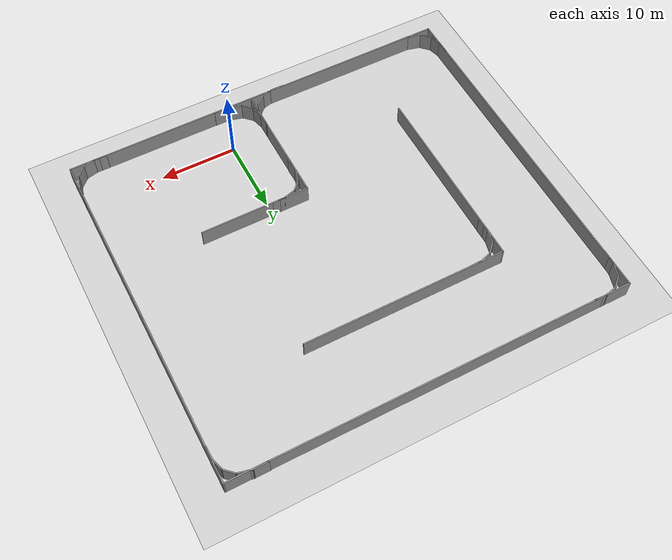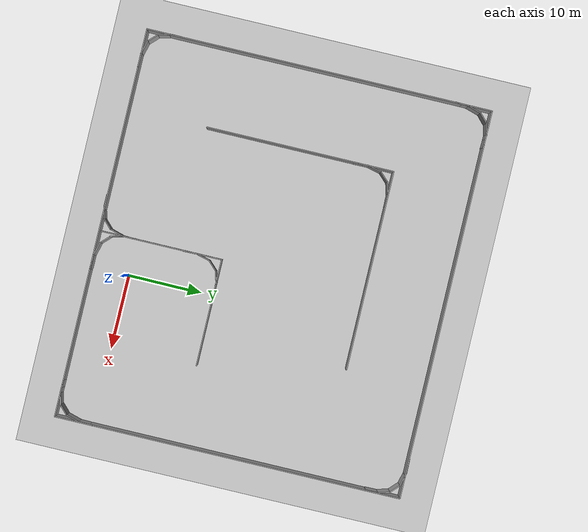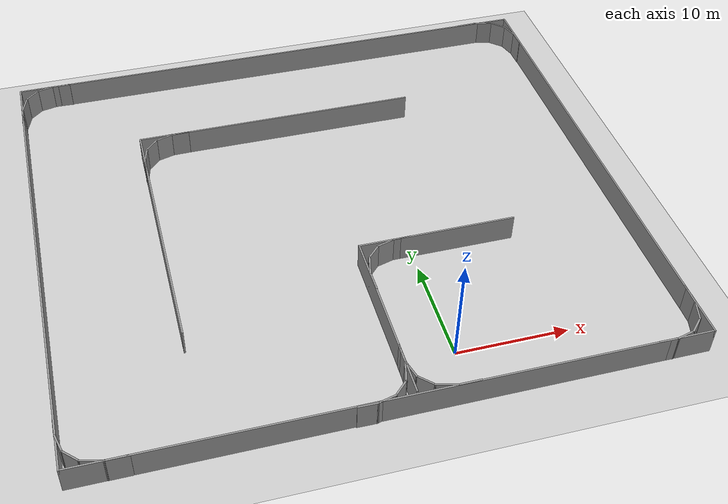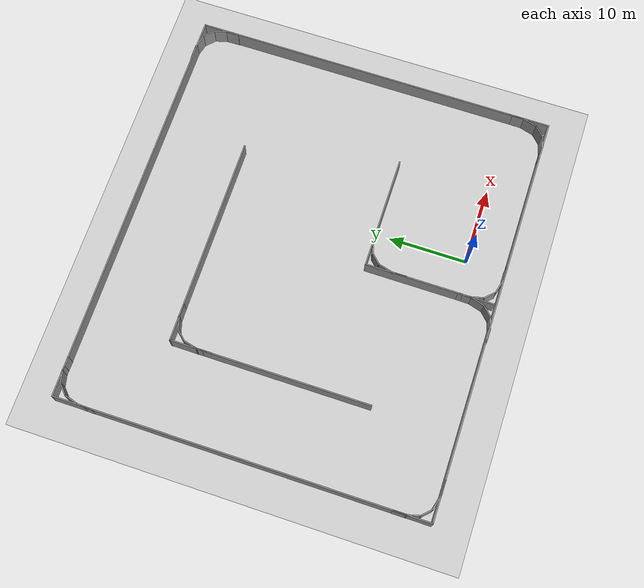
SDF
<sdf version="1.7">
 <world name="default">
  <light name="sun" type="directional">
   <pose>0 0 10 0 -0 0</pose>
   <diffuse>0.8 0.8 0.8 1</diffuse>
   <specular>0.2 0.2 0.2 1</specular>
   <attenuation>
    <range>1000</range>
    <constant>0.9</constant>
    <linear>0.01</linear>
    <quadratic>0.001</quadratic>
   </attenuation>
   <direction>-0.5 0.1 -0.9</direction>
   <spot><inner_angle>0</inner_angle><outer_angle>0</outer_angle><falloff>0</falloff></spot>
  </light>
  <model name="ground_plane">
   <static>1</static>
   <link name="link">
    <collision name="collision">
     <geometry><plane><normal>0 0 1</normal><size>100 100</size></plane></geometry>
     <surface><friction><ode><mu>100</mu><mu2>50</mu2></ode></friction></surface>
    </collision>
    <visual name="visual">
     <cast_shadows>0</cast_shadows>
     <geometry><plane><normal>0 0 1</normal><size>100 100</size></plane></geometry>
     <material>
      <script><uri>file://media/materials/scripts/gazebo.material</uri><name>Gazebo/Grey</name></script>
     </material>
    </visual>
   </link>
  </model>
  <gravity>0 0 -9.8</gravity>
  <magnetic_field>6e-06 2.3e-05 -4.2e-05</magnetic_field>
  <atmosphere type="adiabatic"/>
  <physics type="ode">
   <max_step_size>0.001</max_step_size>
   <real_time_factor>1</real_time_factor>
   <real_time_update_rate>1000</real_time_update_rate>
  </physics>
  <scene><ambient>0.4 0.4 0.4 1</ambient><background>0.7 0.7 0.7 1</background><shadows>1</shadows></scene>
  <audio><device>default</device></audio>
  <spherical_coordinates>
   <surface_model>EARTH_WGS84</surface_model>
   <latitude_deg>0</latitude_deg>
   <longitude_deg>0</longitude_deg>
   <elevation>0</elevation>
   <heading_deg>0</heading_deg>
  </spherical_coordinates>
  <model name="TRACK">
   <pose>-5.82578 18.4678 0 0 -0 0</pose>
   <link name="Wall_50">
    <collision name="Wall_50_Collision">
     <geometry><box><size>47 0.15 2.5</size></box></geometry>
     <pose>0 0 1.25 0 -0 0</pose>
    </collision>
    <visual name="Wall_50_Visual">
     <pose>0 0 1.25 0 -0 0</pose>
     <geometry><box><size>47 0.15 2.5</size></box></geometry>
     <material>
      <script><uri>file://media/materials/scripts/gazebo.material</uri><name>Gazebo/Grey</name></script>
      <ambient>1 1 1 1</ambient>
     </material>
     <meta><layer>0</layer></meta>
    </visual>
    <pose>-26.4877 -0 0 0 -0 -1.5708</pose>
   </link>
   <link name="Wall_51">
    <collision name="Wall_51_Collision">
     <geometry><box><size>52.75 0.15 2.5</size></box></geometry>
     <pose>0 0 1.25 0 -0 0</pose>
    </collision>
    <visual name="Wall_51_Visual">
     <pose>0 0 1.25 0 -0 0</pose>
     <geometry><box><size>52.75 0.15 2.5</size></box></geometry>
     <material>
      <script><uri>file://media/materials/scripts/gazebo.material</uri><name>Gazebo/Grey</name></script>
      <ambient>1 1 1 1</ambient>
     </material>
     <meta><layer>0</layer></meta>
    </visual>
    <pose>-0.187733 -23.425 0 0 -0 0</pose>
   </link>
   <link name="Wall_52">
    <collision name="Wall_52_Collision">
     <geometry><box><size>47 0.15 2.5</size></box></geometry>
     <pose>0 0 1.25 0 -0 0</pose>
    </collision>
    <visual name="Wall_52_Visual">
     <pose>0 0 1.25 0 -0 0</pose>
     <geometry><box><size>47 0.15 2.5</size></box></geometry>
     <material>
      <script><uri>file://media/materials/scripts/gazebo.material</uri><name>Gazebo/Grey</name></script>
      <ambient>1 1 1 1</ambient>
     </material>
     <meta><layer>0</layer></meta>
    </visual>
    <pose>26.1123 -0 0 0 -0 1.5708</pose>
   </link>
   <link name="Wall_53">
    <collision name="Wall_53_Collision">
     <geometry><box><size>52.75 0.15 2.5</size></box></geometry>
     <pose>0 0 1.25 0 -0 0</pose>
    </collision>
    <visual name="Wall_53_Visual">
     <pose>0 0 1.25 0 -0 0</pose>
     <geometry><box><size>52.75 0.15 2.5</size></box></geometry>
     <material>
      <script><uri>file://media/materials/scripts/gazebo.material</uri><name>Gazebo/Grey</name></script>
      <ambient>1 1 1 1</ambient>
     </material>
     <meta><layer>0</layer></meta>
    </visual>
    <pose>-0.187733 23.425 0 0 -0 3.14159</pose>
   </link>
   <link name="Wall_55">
    <collision name="Wall_55_Collision">
     <geometry><box><size>25.5 0.15 2.5</size></box></geometry>
     <pose>0 0 1.25 0 -0 0</pose>
    </collision>
    <visual name="Wall_55_Visual">
     <pose>0 0 1.25 0 -0 0</pose>
     <geometry><box><size>25.5 0.15 2.5</size></box></geometry>
     <material>
      <script><uri>file://media/materials/scripts/gazebo.material</uri><name>Gazebo/Grey</name></script>
      <ambient>1 1 1 1</ambient>
     </material>
     <meta><layer>0</layer></meta>
    </visual>
    <pose>-15.6997 -0.038051 0 0 -0 -1.5708</pose>
   </link>
   <link name="Wall_57">
    <collision name="Wall_57_Collision">
     <geometry><box><size>27 0.15 2.5</size></box></geometry>
     <pose>0 0 1.25 0 -0 0</pose>
    </collision>
    <visual name="Wall_57_Visual">
     <pose>0 0 1.25 0 -0 0</pose>
     <geometry><box><size>27 0.15 2.5</size></box></geometry>
     <material>
      <script><uri>file://media/materials/scripts/gazebo.material</uri><name>Gazebo/Grey</name></script>
      <ambient>1 1 1 1</ambient>
     </material>
     <meta><layer>0</layer></meta>
    </visual>
    <pose>-2.27468 12.6369 0 0 -0 0</pose>
   </link>
   <link name="Wall_61">
    <collision name="Wall_61_Collision">
     <geometry><box><size>16.5 0.15 2.5</size></box></geometry>
     <pose>0 0 1.25 0 -0 0</pose>
    </collision>
    <visual name="Wall_61_Visual">
     <pose>0 0 1.25 0 -0 0</pose>
     <geometry><box><size>16.5 0.15 2.5</size></box></geometry>
     <material>
      <script><uri>file://media/materials/scripts/gazebo.material</uri><name>Gazebo/Grey</name></script>
      <ambient>1 1 1 1</ambient>
     </material>
     <meta><layer>0</layer></meta>
    </visual>
    <pose>0.869711 -14.9513 0 0 -0 1.5708</pose>
   </link>
   <link name="Wall_62">
    <collision name="Wall_62_Collision">
     <geometry><box><size>14.5 0.15 2.5</size></box></geometry>
     <pose>0 0 1.25 0 -0 0</pose>
    </collision>
    <visual name="Wall_62_Visual">
     <pose>0 0 1.25 0 -0 0</pose>
     <geometry><box><size>14.5 0.15 2.5</size></box></geometry>
     <material>
      <script><uri>file://media/materials/scripts/gazebo.material</uri><name>Gazebo/Grey</name></script>
      <ambient>1 1 1 1</ambient>
     </material>
     <meta><layer>0</layer></meta>
    </visual>
    <pose>8.04471 -6.77628 0 0 -0 0</pose>
   </link>
   <static>1</static>
  </model>
  <model name="Corner">
   <pose>-27.5319 -2.60442 0 0 -0 0</pose>
   <link name="Wall_100">
    <collision name="Wall_100_Collision">
     <geometry><box><size>2 0.15 2.5</size></box></geometry>
     <pose>0 0 1.25 0 -0 0</pose>
    </collision>
    <visual name="Wall_100_Visual">
     <pose>0 0 1.25 0 -0 0</pose>
     <geometry><box><size>2 0.15 2.5</size></box></geometry>
     <material>
      <script><uri>file://media/materials/scripts/gazebo.material</uri><name>Gazebo/Grey</name></script>
      <ambient>1 1 1 1</ambient>
     </material>
     <meta><layer>0</layer></meta>
    </visual>
    <pose>-2.36299 -2.13 0 0 -0 -0.261799</pose>
   </link>
   <link name="Wall_101">
    <collision name="Wall_101_Collision">
     <geometry><box><size>2 0.15 2.5</size></box></geometry>
     <pose>0 0 1.25 0 -0 0</pose>
    </collision>
    <visual name="Wall_101_Visual">
     <pose>0 0 1.25 0 -0 0</pose>
     <geometry><box><size>2 0.15 2.5</size></box></geometry>
     <material>
      <script><uri>file://media/materials/scripts/gazebo.material</uri><name>Gazebo/Grey</name></script>
      <ambient>1 1 1 1</ambient>
     </material>
     <meta><layer>0</layer></meta>
    </visual>
    <pose>-0.544513 -2.36941 0 0 -0 0</pose>
   </link>
   <link name="Wall_97">
    <collision name="Wall_97_Collision">
     <geometry><box><size>1.75 0.15 2.5</size></box></geometry>
     <pose>0 0 1.25 0 -0 0</pose>
    </collision>
    <visual name="Wall_97_Visual">
     <pose>0 0 1.25 0 -0 0</pose>
     <geometry><box><size>1.75 0.15 2.5</size></box></geometry>
     <material>
      <script><uri>file://media/materials/scripts/gazebo.material</uri><name>Gazebo/Grey</name></script>
      <ambient>1 1 1 1</ambient>
     </material>
     <meta><layer>0</layer></meta>
    </visual>
    <pose>-4.80196 1.58626 0 0 -0 -1.5708</pose>
   </link>
   <link name="Wall_98">
    <collision name="Wall_98_Collision">
     <geometry><box><size>1.75 0.15 2.5</size></box></geometry>
     <pose>0 0 1.25 0 -0 0</pose>
    </collision>
    <visual name="Wall_98_Visual">
     <pose>0 0 1.25 0 -0 0</pose>
     <geometry><box><size>1.75 0.15 2.5</size></box></geometry>
     <material>
      <script><uri>file://media/materials/scripts/gazebo.material</uri><name>Gazebo/Grey</name></script>
      <ambient>1 1 1 1</ambient>
     </material>
     <meta><layer>0</layer></meta>
    </visual>
    <pose>-4.5949 0.013521 0 0 -0 -1.309</pose>
   </link>
   <link name="Wall_99">
    <collision name="Wall_99_Collision">
     <geometry><box><size>1.75 0.15 2.5</size></box></geometry>
     <pose>0 0 1.25 0 -0 0</pose>
    </collision>
    <visual name="Wall_99_Visual">
     <pose>0 0 1.25 0 -0 0</pose>
     <geometry><box><size>1.75 0.15 2.5</size></box></geometry>
     <material>
      <script><uri>file://media/materials/scripts/gazebo.material</uri><name>Gazebo/Grey</name></script>
      <ambient>1 1 1 1</ambient>
     </material>
     <meta><layer>0</layer></meta>
    </visual>
    <pose>-3.82216 -1.3249 0 0 -0 -0.785398</pose>
   </link>
   <static>1</static>
  </model>
  <model name="Corner_clone">
   <pose>-7.32853 -0.264233 0 0 -0 1.55293</pose>
   <link name="Wall_100">
    <collision name="Wall_100_Collision">
     <geometry><box><size>2 0.15 2.5</size></box></geometry>
     <pose>0 0 1.25 0 -0 0</pose>
    </collision>
    <visual name="Wall_100_Visual">
     <pose>0 0 1.25 0 -0 0</pose>
     <geometry><box><size>2 0.15 2.5</size></box></geometry>
     <material>
      <script><uri>file://media/materials/scripts/gazebo.material</uri><name>Gazebo/Grey</name></script>
      <ambient>1 1 1 1</ambient>
     </material>
     <meta><layer>0</layer></meta>
    </visual>
    <pose>-2.36299 -2.13 0 0 -0 -0.261799</pose>
   </link>
   <link name="Wall_101">
    <collision name="Wall_101_Collision">
     <geometry><box><size>2 0.15 2.5</size></box></geometry>
     <pose>0 0 1.25 0 -0 0</pose>
    </collision>
    <visual name="Wall_101_Visual">
     <pose>0 0 1.25 0 -0 0</pose>
     <geometry><box><size>2 0.15 2.5</size></box></geometry>
     <material>
      <script><uri>file://media/materials/scripts/gazebo.material</uri><name>Gazebo/Grey</name></script>
      <ambient>1 1 1 1</ambient>
     </material>
     <meta><layer>0</layer></meta>
    </visual>
    <pose>-0.544513 -2.36941 0 0 -0 0</pose>
   </link>
   <link name="Wall_97">
    <collision name="Wall_97_Collision">
     <geometry><box><size>1.75 0.15 2.5</size></box></geometry>
     <pose>0 0 1.25 0 -0 0</pose>
    </collision>
    <visual name="Wall_97_Visual">
     <pose>0 0 1.25 0 -0 0</pose>
     <geometry><box><size>1.75 0.15 2.5</size></box></geometry>
     <material>
      <script><uri>file://media/materials/scripts/gazebo.material</uri><name>Gazebo/Grey</name></script>
      <ambient>1 1 1 1</ambient>
     </material>
     <meta><layer>0</layer></meta>
    </visual>
    <pose>-4.80196 1.58626 0 0 -0 -1.5708</pose>
   </link>
   <link name="Wall_98">
    <collision name="Wall_98_Collision">
     <geometry><box><size>1.75 0.15 2.5</size></box></geometry>
     <pose>0 0 1.25 0 -0 0</pose>
    </collision>
    <visual name="Wall_98_Visual">
     <pose>0 0 1.25 0 -0 0</pose>
     <geometry><box><size>1.75 0.15 2.5</size></box></geometry>
     <material>
      <script><uri>file://media/materials/scripts/gazebo.material</uri><name>Gazebo/Grey</name></script>
      <ambient>1 1 1 1</ambient>
     </material>
     <meta><layer>0</layer></meta>
    </visual>
    <pose>-4.5949 0.013521 0 0 -0 -1.309</pose>
   </link>
   <link name="Wall_99">
    <collision name="Wall_99_Collision">
     <geometry><box><size>1.75 0.15 2.5</size></box></geometry>
     <pose>0 0 1.25 0 -0 0</pose>
    </collision>
    <visual name="Wall_99_Visual">
     <pose>0 0 1.25 0 -0 0</pose>
     <geometry><box><size>1.75 0.15 2.5</size></box></geometry>
     <material>
      <script><uri>file://media/materials/scripts/gazebo.material</uri><name>Gazebo/Grey</name></script>
      <ambient>1 1 1 1</ambient>
     </material>
     <meta><layer>0</layer></meta>
    </visual>
    <pose>-3.82216 -1.3249 0 0 -0 -0.785398</pose>
   </link>
   <static>1</static>
  </model>
  <model name="Corner_clone_clone">
   <pose>17.9165 -0.181806 0 0 -0 1.55293</pose>
   <link name="Wall_100">
    <collision name="Wall_100_Collision">
     <geometry><box><size>2 0.15 2.5</size></box></geometry>
     <pose>0 0 1.25 0 -0 0</pose>
    </collision>
    <visual name="Wall_100_Visual">
     <pose>0 0 1.25 0 -0 0</pose>
     <geometry><box><size>2 0.15 2.5</size></box></geometry>
     <material>
      <script><uri>file://media/materials/scripts/gazebo.material</uri><name>Gazebo/Grey</name></script>
      <ambient>1 1 1 1</ambient>
     </material>
     <meta><layer>0</layer></meta>
    </visual>
    <pose>-2.36299 -2.13 0 0 -0 -0.261799</pose>
   </link>
   <link name="Wall_101">
    <collision name="Wall_101_Collision">
     <geometry><box><size>2 0.15 2.5</size></box></geometry>
     <pose>0 0 1.25 0 -0 0</pose>
    </collision>
    <visual name="Wall_101_Visual">
     <pose>0 0 1.25 0 -0 0</pose>
     <geometry><box><size>2 0.15 2.5</size></box></geometry>
     <material>
      <script><uri>file://media/materials/scripts/gazebo.material</uri><name>Gazebo/Grey</name></script>
      <ambient>1 1 1 1</ambient>
     </material>
     <meta><layer>0</layer></meta>
    </visual>
    <pose>-0.544513 -2.36941 0 0 -0 0</pose>
   </link>
   <link name="Wall_97">
    <collision name="Wall_97_Collision">
     <geometry><box><size>1.75 0.15 2.5</size></box></geometry>
     <pose>0 0 1.25 0 -0 0</pose>
    </collision>
    <visual name="Wall_97_Visual">
     <pose>0 0 1.25 0 -0 0</pose>
     <geometry><box><size>1.75 0.15 2.5</size></box></geometry>
     <material>
      <script><uri>file://media/materials/scripts/gazebo.material</uri><name>Gazebo/Grey</name></script>
      <ambient>1 1 1 1</ambient>
     </material>
     <meta><layer>0</layer></meta>
    </visual>
    <pose>-4.80196 1.58626 0 0 -0 -1.5708</pose>
   </link>
   <link name="Wall_98">
    <collision name="Wall_98_Collision">
     <geometry><box><size>1.75 0.15 2.5</size></box></geometry>
     <pose>0 0 1.25 0 -0 0</pose>
    </collision>
    <visual name="Wall_98_Visual">
     <pose>0 0 1.25 0 -0 0</pose>
     <geometry><box><size>1.75 0.15 2.5</size></box></geometry>
     <material>
      <script><uri>file://media/materials/scripts/gazebo.material</uri><name>Gazebo/Grey</name></script>
      <ambient>1 1 1 1</ambient>
     </material>
     <meta><layer>0</layer></meta>
    </visual>
    <pose>-4.5949 0.013521 0 0 -0 -1.309</pose>
   </link>
   <link name="Wall_99">
    <collision name="Wall_99_Collision">
     <geometry><box><size>1.75 0.15 2.5</size></box></geometry>
     <pose>0 0 1.25 0 -0 0</pose>
    </collision>
    <visual name="Wall_99_Visual">
     <pose>0 0 1.25 0 -0 0</pose>
     <geometry><box><size>1.75 0.15 2.5</size></box></geometry>
     <material>
      <script><uri>file://media/materials/scripts/gazebo.material</uri><name>Gazebo/Grey</name></script>
      <ambient>1 1 1 1</ambient>
     </material>
     <meta><layer>0</layer></meta>
    </visual>
    <pose>-3.82216 -1.3249 0 0 -0 -0.785398</pose>
   </link>
   <static>1</static>
  </model>
  <model name="Corner_clone_clone_clone">
   <pose>-0.161154 -2.54147 0 0 -0 0.00182</pose>
   <link name="Wall_100">
    <collision name="Wall_100_Collision">
     <geometry><box><size>2 0.15 2.5</size></box></geometry>
     <pose>0 0 1.25 0 -0 0</pose>
    </collision>
    <visual name="Wall_100_Visual">
     <pose>0 0 1.25 0 -0 0</pose>
     <geometry><box><size>2 0.15 2.5</size></box></geometry>
     <material>
      <script><uri>file://media/materials/scripts/gazebo.material</uri><name>Gazebo/Grey</name></script>
      <ambient>1 1 1 1</ambient>
     </material>
     <meta><layer>0</layer></meta>
    </visual>
    <pose>-2.36299 -2.13 0 0 -0 -0.261799</pose>
   </link>
   <link name="Wall_101">
    <collision name="Wall_101_Collision">
     <geometry><box><size>2 0.15 2.5</size></box></geometry>
     <pose>0 0 1.25 0 -0 0</pose>
    </collision>
    <visual name="Wall_101_Visual">
     <pose>0 0 1.25 0 -0 0</pose>
     <geometry><box><size>2 0.15 2.5</size></box></geometry>
     <material>
      <script><uri>file://media/materials/scripts/gazebo.material</uri><name>Gazebo/Grey</name></script>
      <ambient>1 1 1 1</ambient>
     </material>
     <meta><layer>0</layer></meta>
    </visual>
    <pose>-0.544513 -2.36941 0 0 -0 0</pose>
   </link>
   <link name="Wall_97">
    <collision name="Wall_97_Collision">
     <geometry><box><size>1.75 0.15 2.5</size></box></geometry>
     <pose>0 0 1.25 0 -0 0</pose>
    </collision>
    <visual name="Wall_97_Visual">
     <pose>0 0 1.25 0 -0 0</pose>
     <geometry><box><size>1.75 0.15 2.5</size></box></geometry>
     <material>
      <script><uri>file://media/materials/scripts/gazebo.material</uri><name>Gazebo/Grey</name></script>
      <ambient>1 1 1 1</ambient>
     </material>
     <meta><layer>0</layer></meta>
    </visual>
    <pose>-4.80196 1.58626 0 0 -0 -1.5708</pose>
   </link>
   <link name="Wall_98">
    <collision name="Wall_98_Collision">
     <geometry><box><size>1.75 0.15 2.5</size></box></geometry>
     <pose>0 0 1.25 0 -0 0</pose>
    </collision>
    <visual name="Wall_98_Visual">
     <pose>0 0 1.25 0 -0 0</pose>
     <geometry><box><size>1.75 0.15 2.5</size></box></geometry>
     <material>
      <script><uri>file://media/materials/scripts/gazebo.material</uri><name>Gazebo/Grey</name></script>
      <ambient>1 1 1 1</ambient>
     </material>
     <meta><layer>0</layer></meta>
    </visual>
    <pose>-4.5949 0.013521 0 0 -0 -1.309</pose>
   </link>
   <link name="Wall_99">
    <collision name="Wall_99_Collision">
     <geometry><box><size>1.75 0.15 2.5</size></box></geometry>
     <pose>0 0 1.25 0 -0 0</pose>
    </collision>
    <visual name="Wall_99_Visual">
     <pose>0 0 1.25 0 -0 0</pose>
     <geometry><box><size>1.75 0.15 2.5</size></box></geometry>
     <material>
      <script><uri>file://media/materials/scripts/gazebo.material</uri><name>Gazebo/Grey</name></script>
      <ambient>1 1 1 1</ambient>
     </material>
     <meta><layer>0</layer></meta>
    </visual>
    <pose>-3.82216 -1.3249 0 0 -0 -0.785398</pose>
   </link>
   <static>1</static>
  </model>
  <model name="Corner_clone_clone_clone_0">
   <pose>-19.1413 26.25 0 0 0 -1.54958</pose>
   <link name="Wall_100">
    <collision name="Wall_100_Collision">
     <geometry><box><size>2 0.15 2.5</size></box></geometry>
     <pose>0 0 1.25 0 -0 0</pose>
    </collision>
    <visual name="Wall_100_Visual">
     <pose>0 0 1.25 0 -0 0</pose>
     <geometry><box><size>2 0.15 2.5</size></box></geometry>
     <material>
      <script><uri>file://media/materials/scripts/gazebo.material</uri><name>Gazebo/Grey</name></script>
      <ambient>1 1 1 1</ambient>
     </material>
     <meta><layer>0</layer></meta>
    </visual>
    <pose>-2.36299 -2.13 0 0 -0 -0.261799</pose>
   </link>
   <link name="Wall_101">
    <collision name="Wall_101_Collision">
     <geometry><box><size>2 0.15 2.5</size></box></geometry>
     <pose>0 0 1.25 0 -0 0</pose>
    </collision>
    <visual name="Wall_101_Visual">
     <pose>0 0 1.25 0 -0 0</pose>
     <geometry><box><size>2 0.15 2.5</size></box></geometry>
     <material>
      <script><uri>file://media/materials/scripts/gazebo.material</uri><name>Gazebo/Grey</name></script>
      <ambient>1 1 1 1</ambient>
     </material>
     <meta><layer>0</layer></meta>
    </visual>
    <pose>-0.544513 -2.36941 0 0 -0 0</pose>
   </link>
   <link name="Wall_97">
    <collision name="Wall_97_Collision">
     <geometry><box><size>1.75 0.15 2.5</size></box></geometry>
     <pose>0 0 1.25 0 -0 0</pose>
    </collision>
    <visual name="Wall_97_Visual">
     <pose>0 0 1.25 0 -0 0</pose>
     <geometry><box><size>1.75 0.15 2.5</size></box></geometry>
     <material>
      <script><uri>file://media/materials/scripts/gazebo.material</uri><name>Gazebo/Grey</name></script>
      <ambient>1 1 1 1</ambient>
     </material>
     <meta><layer>0</layer></meta>
    </visual>
    <pose>-4.80196 1.58626 0 0 -0 -1.5708</pose>
   </link>
   <link name="Wall_98">
    <collision name="Wall_98_Collision">
     <geometry><box><size>1.75 0.15 2.5</size></box></geometry>
     <pose>0 0 1.25 0 -0 0</pose>
    </collision>
    <visual name="Wall_98_Visual">
     <pose>0 0 1.25 0 -0 0</pose>
     <geometry><box><size>1.75 0.15 2.5</size></box></geometry>
     <material>
      <script><uri>file://media/materials/scripts/gazebo.material</uri><name>Gazebo/Grey</name></script>
      <ambient>1 1 1 1</ambient>
     </material>
     <meta><layer>0</layer></meta>
    </visual>
    <pose>-4.5949 0.013521 0 0 -0 -1.309</pose>
   </link>
   <link name="Wall_99">
    <collision name="Wall_99_Collision">
     <geometry><box><size>1.75 0.15 2.5</size></box></geometry>
     <pose>0 0 1.25 0 -0 0</pose>
    </collision>
    <visual name="Wall_99_Visual">
     <pose>0 0 1.25 0 -0 0</pose>
     <geometry><box><size>1.75 0.15 2.5</size></box></geometry>
     <material>
      <script><uri>file://media/materials/scripts/gazebo.material</uri><name>Gazebo/Grey</name></script>
      <ambient>1 1 1 1</ambient>
     </material>
     <meta><layer>0</layer></meta>
    </visual>
    <pose>-3.82216 -1.3249 0 0 -0 -0.785398</pose>
   </link>
   <static>1</static>
  </model>
  <model name="Corner_clone_clone_clone_1">
   <pose>-29.9661 37.1399 0 0 0 -1.60647</pose>
   <link name="Wall_100">
    <collision name="Wall_100_Collision">
     <geometry><box><size>2 0.15 2.5</size></box></geometry>
     <pose>0 0 1.25 0 -0 0</pose>
    </collision>
    <visual name="Wall_100_Visual">
     <pose>0 0 1.25 0 -0 0</pose>
     <geometry><box><size>2 0.15 2.5</size></box></geometry>
     <material>
      <script><uri>file://media/materials/scripts/gazebo.material</uri><name>Gazebo/Grey</name></script>
      <ambient>1 1 1 1</ambient>
     </material>
     <meta><layer>0</layer></meta>
    </visual>
    <pose>-2.36299 -2.13 0 0 -0 -0.261799</pose>
   </link>
   <link name="Wall_101">
    <collision name="Wall_101_Collision">
     <geometry><box><size>2 0.15 2.5</size></box></geometry>
     <pose>0 0 1.25 0 -0 0</pose>
    </collision>
    <visual name="Wall_101_Visual">
     <pose>0 0 1.25 0 -0 0</pose>
     <geometry><box><size>2 0.15 2.5</size></box></geometry>
     <material>
      <script><uri>file://media/materials/scripts/gazebo.material</uri><name>Gazebo/Grey</name></script>
      <ambient>1 1 1 1</ambient>
     </material>
     <meta><layer>0</layer></meta>
    </visual>
    <pose>-0.544513 -2.36941 0 0 -0 0</pose>
   </link>
   <link name="Wall_97">
    <collision name="Wall_97_Collision">
     <geometry><box><size>1.75 0.15 2.5</size></box></geometry>
     <pose>0 0 1.25 0 -0 0</pose>
    </collision>
    <visual name="Wall_97_Visual">
     <pose>0 0 1.25 0 -0 0</pose>
     <geometry><box><size>1.75 0.15 2.5</size></box></geometry>
     <material>
      <script><uri>file://media/materials/scripts/gazebo.material</uri><name>Gazebo/Grey</name></script>
      <ambient>1 1 1 1</ambient>
     </material>
     <meta><layer>0</layer></meta>
    </visual>
    <pose>-4.80196 1.58626 0 0 -0 -1.5708</pose>
   </link>
   <link name="Wall_98">
    <collision name="Wall_98_Collision">
     <geometry><box><size>1.75 0.15 2.5</size></box></geometry>
     <pose>0 0 1.25 0 -0 0</pose>
    </collision>
    <visual name="Wall_98_Visual">
     <pose>0 0 1.25 0 -0 0</pose>
     <geometry><box><size>1.75 0.15 2.5</size></box></geometry>
     <material>
      <script><uri>file://media/materials/scripts/gazebo.material</uri><name>Gazebo/Grey</name></script>
      <ambient>1 1 1 1</ambient>
     </material>
     <meta><layer>0</layer></meta>
    </visual>
    <pose>-4.5949 0.013521 0 0 -0 -1.309</pose>
   </link>
   <link name="Wall_99">
    <collision name="Wall_99_Collision">
     <geometry><box><size>1.75 0.15 2.5</size></box></geometry>
     <pose>0 0 1.25 0 -0 0</pose>
    </collision>
    <visual name="Wall_99_Visual">
     <pose>0 0 1.25 0 -0 0</pose>
     <geometry><box><size>1.75 0.15 2.5</size></box></geometry>
     <material>
      <script><uri>file://media/materials/scripts/gazebo.material</uri><name>Gazebo/Grey</name></script>
      <ambient>1 1 1 1</ambient>
     </material>
     <meta><layer>0</layer></meta>
    </visual>
    <pose>-3.82216 -1.3249 0 0 -0 -0.785398</pose>
   </link>
   <static>1</static>
  </model>
  <model name="Corner_clone_clone_clone_2">
   <pose>-2.55332 6.87221 0 0 -0 -1.55856</pose>
   <link name="Wall_100">
    <collision name="Wall_100_Collision">
     <geometry><box><size>2 0.15 2.5</size></box></geometry>
     <pose>0 0 1.25 0 -0 0</pose>
    </collision>
    <visual name="Wall_100_Visual">
     <pose>0 0 1.25 0 -0 0</pose>
     <geometry><box><size>2 0.15 2.5</size></box></geometry>
     <material>
      <script><uri>file://media/materials/scripts/gazebo.material</uri><name>Gazebo/Grey</name></script>
      <ambient>1 1 1 1</ambient>
     </material>
     <meta><layer>0</layer></meta>
    </visual>
    <pose>-2.36299 -2.13 0 0 -0 -0.261799</pose>
   </link>
   <link name="Wall_101">
    <collision name="Wall_101_Collision">
     <geometry><box><size>2 0.15 2.5</size></box></geometry>
     <pose>0 0 1.25 0 -0 0</pose>
    </collision>
    <visual name="Wall_101_Visual">
     <pose>0 0 1.25 0 -0 0</pose>
     <geometry><box><size>2 0.15 2.5</size></box></geometry>
     <material>
      <script><uri>file://media/materials/scripts/gazebo.material</uri><name>Gazebo/Grey</name></script>
      <ambient>1 1 1 1</ambient>
     </material>
     <meta><layer>0</layer></meta>
    </visual>
    <pose>-0.544513 -2.36941 0 0 -0 0</pose>
   </link>
   <link name="Wall_97">
    <collision name="Wall_97_Collision">
     <geometry><box><size>1.75 0.15 2.5</size></box></geometry>
     <pose>0 0 1.25 0 -0 0</pose>
    </collision>
    <visual name="Wall_97_Visual">
     <pose>0 0 1.25 0 -0 0</pose>
     <geometry><box><size>1.75 0.15 2.5</size></box></geometry>
     <material>
      <script><uri>file://media/materials/scripts/gazebo.material</uri><name>Gazebo/Grey</name></script>
      <ambient>1 1 1 1</ambient>
     </material>
     <meta><layer>0</layer></meta>
    </visual>
    <pose>-4.80196 1.58626 0 0 -0 -1.5708</pose>
   </link>
   <link name="Wall_98">
    <collision name="Wall_98_Collision">
     <geometry><box><size>1.75 0.15 2.5</size></box></geometry>
     <pose>0 0 1.25 0 -0 0</pose>
    </collision>
    <visual name="Wall_98_Visual">
     <pose>0 0 1.25 0 -0 0</pose>
     <geometry><box><size>1.75 0.15 2.5</size></box></geometry>
     <material>
      <script><uri>file://media/materials/scripts/gazebo.material</uri><name>Gazebo/Grey</name></script>
      <ambient>1 1 1 1</ambient>
     </material>
     <meta><layer>0</layer></meta>
    </visual>
    <pose>-4.5949 0.013521 0 0 -0 -1.309</pose>
   </link>
   <link name="Wall_99">
    <collision name="Wall_99_Collision">
     <geometry><box><size>1.75 0.15 2.5</size></box></geometry>
     <pose>0 0 1.25 0 -0 0</pose>
    </collision>
    <visual name="Wall_99_Visual">
     <pose>0 0 1.25 0 -0 0</pose>
     <geometry><box><size>1.75 0.15 2.5</size></box></geometry>
     <material>
      <script><uri>file://media/materials/scripts/gazebo.material</uri><name>Gazebo/Grey</name></script>
      <ambient>1 1 1 1</ambient>
     </material>
     <meta><layer>0</layer></meta>
    </visual>
    <pose>-3.82216 -1.3249 0 0 -0 -0.785398</pose>
   </link>
   <static>1</static>
  </model>
  <model name="Corner_clone_clone_clone_3">
   <pose>15.403 39.5781 0 0 -0 -3.12532</pose>
   <link name="Wall_100">
    <collision name="Wall_100_Collision">
     <geometry><box><size>2 0.15 2.5</size></box></geometry>
     <pose>0 0 1.25 0 -0 0</pose>
    </collision>
    <visual name="Wall_100_Visual">
     <pose>0 0 1.25 0 -0 0</pose>
     <geometry><box><size>2 0.15 2.5</size></box></geometry>
     <material>
      <script><uri>file://media/materials/scripts/gazebo.material</uri><name>Gazebo/Grey</name></script>
      <ambient>1 1 1 1</ambient>
     </material>
     <meta><layer>0</layer></meta>
    </visual>
    <pose>-2.36299 -2.13 0 0 -0 -0.261799</pose>
   </link>
   <link name="Wall_101">
    <collision name="Wall_101_Collision">
     <geometry><box><size>2 0.15 2.5</size></box></geometry>
     <pose>0 0 1.25 0 -0 0</pose>
    </collision>
    <visual name="Wall_101_Visual">
     <pose>0 0 1.25 0 -0 0</pose>
     <geometry><box><size>2 0.15 2.5</size></box></geometry>
     <material>
      <script><uri>file://media/materials/scripts/gazebo.material</uri><name>Gazebo/Grey</name></script>
      <ambient>1 1 1 1</ambient>
     </material>
     <meta><layer>0</layer></meta>
    </visual>
    <pose>-0.544513 -2.36941 0 0 -0 0</pose>
   </link>
   <link name="Wall_97">
    <collision name="Wall_97_Collision">
     <geometry><box><size>1.75 0.15 2.5</size></box></geometry>
     <pose>0 0 1.25 0 -0 0</pose>
    </collision>
    <visual name="Wall_97_Visual">
     <pose>0 0 1.25 0 -0 0</pose>
     <geometry><box><size>1.75 0.15 2.5</size></box></geometry>
     <material>
      <script><uri>file://media/materials/scripts/gazebo.material</uri><name>Gazebo/Grey</name></script>
      <ambient>1 1 1 1</ambient>
     </material>
     <meta><layer>0</layer></meta>
    </visual>
    <pose>-4.80196 1.58626 0 0 -0 -1.5708</pose>
   </link>
   <link name="Wall_98">
    <collision name="Wall_98_Collision">
     <geometry><box><size>1.75 0.15 2.5</size></box></geometry>
     <pose>0 0 1.25 0 -0 0</pose>
    </collision>
    <visual name="Wall_98_Visual">
     <pose>0 0 1.25 0 -0 0</pose>
     <geometry><box><size>1.75 0.15 2.5</size></box></geometry>
     <material>
      <script><uri>file://media/materials/scripts/gazebo.material</uri><name>Gazebo/Grey</name></script>
      <ambient>1 1 1 1</ambient>
     </material>
     <meta><layer>0</layer></meta>
    </visual>
    <pose>-4.5949 0.013521 0 0 -0 -1.309</pose>
   </link>
   <link name="Wall_99">
    <collision name="Wall_99_Collision">
     <geometry><box><size>1.75 0.15 2.5</size></box></geometry>
     <pose>0 0 1.25 0 -0 0</pose>
    </collision>
    <visual name="Wall_99_Visual">
     <pose>0 0 1.25 0 -0 0</pose>
     <geometry><box><size>1.75 0.15 2.5</size></box></geometry>
     <material>
      <script><uri>file://media/materials/scripts/gazebo.material</uri><name>Gazebo/Grey</name></script>
      <ambient>1 1 1 1</ambient>
     </material>
     <meta><layer>0</layer></meta>
    </visual>
    <pose>-3.82216 -1.3249 0 0 -0 -0.785398</pose>
   </link>
   <static>1</static>
  </model>
 </world>
</sdf>
